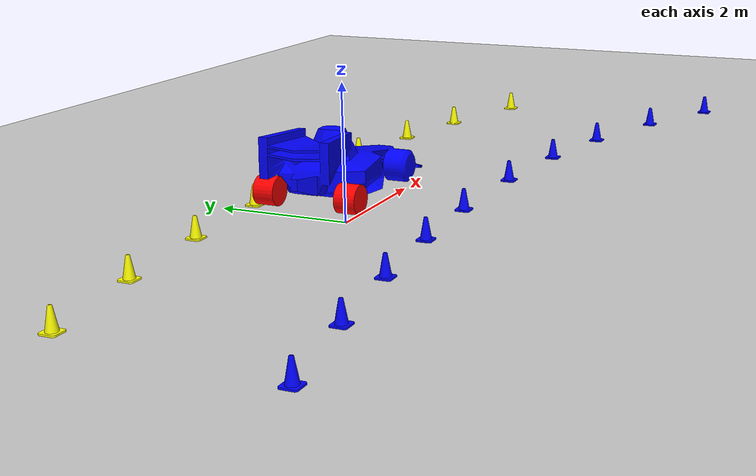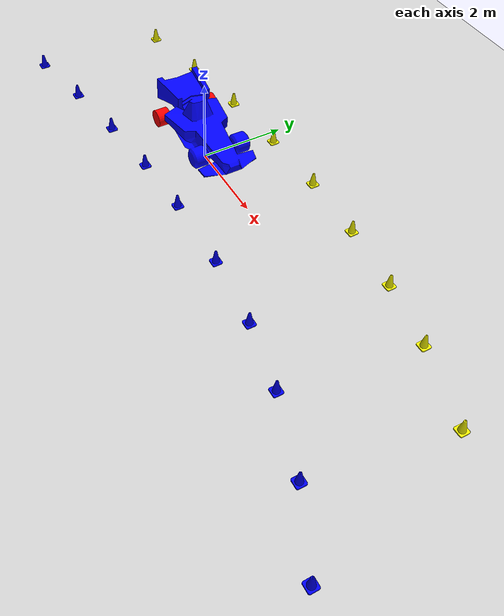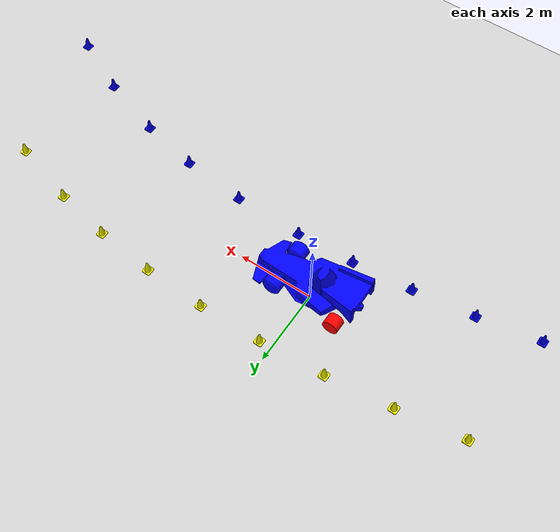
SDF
<sdf version="1.8">
 <world name="sim">
  <model name="ground_plane">
   <static>true</static>
   <link name="link">
    <collision name="collision"><geometry><plane><normal>0 0 0</normal></plane></geometry></collision>
    <visual name="visual">
     <geometry><plane><normal>0 0 1</normal><size>1000 1000</size></plane></geometry>
     <material>
      <ambient>0.8 0.8 0.8 1</ambient>
      <diffuse>0.8 0.8 0.8 1</diffuse>
      <specular>0.8 0.8 0.8 1</specular>
     </material>
    </visual>
   </link>
  </model>
  <model name="vehicle_blue">
   <pose>0 0 1.0 0.0 0.0 0.0</pose>
   <frame name="lidar_frame" attached_to="chassis"><pose>-0.26 0 0.47 0 0.1570796 0.0</pose></frame>
   <link name="chassis">
    <sensor name="lidar" type="gpu_lidar">
     <pose relative_to="lidar_frame">0 0 0 0 0 0</pose>
     <topic>model</topic>
     <update_rate>20</update_rate>
     <lidar>
      <scan>
       <horizontal>
        <samples>500</samples>
        <resolution>0.1</resolution>
        <min_angle>-1.570796</min_angle>
        <max_angle>1.570796</max_angle>
       </horizontal>
       <vertical>
        <samples>320</samples>
        <resolution>0.1</resolution>
        <min_angle>-0.4363323</min_angle>
        <max_angle>0.2617994</max_angle>
       </vertical>
      </scan>
      <range><min>0.01</min><max>80.0</max><resolution>0.01</resolution></range>
      <noise><type>gaussian</type><mean>0.0</mean><stddev>0.01</stddev></noise>
     </lidar>
     <always_on>1</always_on>
     <visualize>true</visualize>
    </sensor>
    <sensor name="imu_sensor" type="imu">
     <always_on>1</always_on>
     <update_rate>100</update_rate>
     <visualize>true</visualize>
     <topic>imu</topic>
    </sensor>
    <inertial>
     <mass>100.14395</mass>
     <inertia>
      <ixx>0.126164</ixx>
      <ixy>0</ixy>
      <ixz>0</ixz>
      <iyy>0.416519</iyy>
      <iyz>0</iyz>
      <izz>0.481014</izz>
     </inertia>
    </inertial>
    <visual name="visual">
     <geometry><mesh><scale>1 1 1</scale><uri>../models/formula_car_with_wheels.stl</uri></mesh></geometry>
     <material>
      <ambient>0.0 0.0 1.0 1</ambient>
      <diffuse>0.0 0.0 1.0 1</diffuse>
      <specular>0.0 0.0 1.0 1</specular>
     </material>
    </visual>
    <collision name="collision">
     <geometry>
      <mesh><scale>1 1 1</scale><uri>../models/formula_car_with_wheels.stl</uri></mesh>
      <surface><friction><ode><mu>1.2</mu><mu2>1.2</mu2></ode></friction></surface>
     </geometry>
    </collision>
   </link>
   <link name="left_wheel">
    <pose relative_to="chassis">-1 0.6 -0.33 -1.5707 0 0</pose>
    <inertial>
     <mass>20</mass>
     <inertia><ixx>0.145833</ixx><ixy>0</ixy><ixz>0</ixz><iyy>0.145833</iyy><iyz>0</iyz><izz>0.125</izz></inertia>
    </inertial>
    <visual name="visual">
     <geometry><cylinder><radius>0.2</radius><length>0.3</length></cylinder></geometry>
     <material>
      <ambient>1.0 0.0 0.0 1</ambient>
      <diffuse>1.0 0.0 0.0 1</diffuse>
      <specular>1.0 0.0 0.0 1</specular>
     </material>
    </visual>
    <collision name="collision">
     <geometry><cylinder><radius>0.2</radius><length>0.3</length></cylinder></geometry>
    </collision>
   </link>
   <link name="right_wheel">
    <pose relative_to="chassis">-1 -0.6 -0.33 -1.5707 0 0</pose>
    <inertial>
     <mass>20</mass>
     <inertia><ixx>0.145833</ixx><ixy>0</ixy><ixz>0</ixz><iyy>0.145833</iyy><iyz>0</iyz><izz>0.125</izz></inertia>
    </inertial>
    <visual name="visual">
     <geometry><cylinder><radius>0.2</radius><length>0.3</length></cylinder></geometry>
     <material>
      <ambient>1.0 0.0 0.0 1</ambient>
      <diffuse>1.0 0.0 0.0 1</diffuse>
      <specular>1.0 0.0 0.0 1</specular>
     </material>
    </visual>
    <collision name="collision">
     <geometry><cylinder><radius>0.2</radius><length>0.3</length></cylinder></geometry>
    </collision>
   </link>
   <link name="caster">
    <pose relative_to="chassis">0.7 0 -0.43 0 0 0</pose>
    <inertial>
     <mass>1</mass>
     <inertia><ixx>0.1</ixx><ixy>0</ixy><ixz>0</ixz><iyy>0.1</iyy><iyz>0</iyz><izz>0.1</izz></inertia>
    </inertial>
    <visual name="visual_caster">
     <geometry><sphere><radius>0.1</radius></sphere></geometry>
     <material>
      <ambient>0.2 0.2 0.2 1</ambient>
      <diffuse>0.2 0.2 0.2 1</diffuse>
      <specular>0.2 0.2 0.2 1</specular>
     </material>
    </visual>
    <collision name="collision_caster"><geometry><sphere><radius>0.1</radius></sphere></geometry></collision>
   </link>
   <joint name="left_wheel_joint" type="revolute">
    <pose relative_to="left_wheel"/>
    <parent>chassis</parent>
    <child>left_wheel</child>
    <axis>
     <xyz expressed_in="__model__">0 1 0</xyz>
     <limit><lower>-1.79769e+308</lower><upper>1.79769e+308</upper></limit>
    </axis>
   </joint>
   <joint name="right_wheel_joint" type="revolute">
    <pose relative_to="right_wheel"/>
    <parent>chassis</parent>
    <child>right_wheel</child>
    <axis>
     <xyz expressed_in="__model__">0 1 0</xyz>
     <limit><lower>-1.79769e+308</lower><upper>1.79769e+308</upper></limit>
    </axis>
   </joint>
   <joint name="caster_wheel" type="ball"><parent>chassis</parent><child>caster</child></joint>
   <plugin filename="libignition-gazebo-diff-drive-system.so" name="ignition::gazebo::systems::DiffDrive">
    <left_joint>left_wheel_joint</left_joint>
    <right_joint>right_wheel_joint</right_joint>
    <wheel_separation>1.2</wheel_separation>
    <wheel_radius>0.2</wheel_radius>
    <topic>/model/cmd_vel</topic>
   </plugin>
   <plugin filename="libignition-gazebo-odometry-publisher-system" name="ignition::gazebo::systems::OdometryPublisher">
    <rpy_offset>0 0 0</rpy_offset>
    <dimensions>3</dimensions>
    <odom_publish_frequency>20</odom_publish_frequency>
   </plugin>
  </model>
  <model name="cone_24">
   <static>true</static>
   <pose>-5.149413122479829 -2.0639887468521567 0 0 0 0</pose>
   <link name="cone_link">
    <inertial>
     <mass>0.45</mass>
     <inertia><ixx>0.5</ixx><ixy>0</ixy><ixz>0</ixz><iyy>0.5</iyy><iyz>0</iyz><izz>0.5</izz></inertia>
    </inertial>
    <visual name="visual">
     <geometry><mesh><scale>1 1 1</scale><uri>../models/cone_325_no_color.stl</uri></mesh></geometry>
     <material>
      <ambient>0.0 0.0 1.0 1</ambient>
      <diffuse>0.0 0.0 1.0 1</diffuse>
      <specular>0.0 0.0 1.0 1</specular>
     </material>
    </visual>
    <collision name="collision">
     <geometry><mesh><uri>../models/cone_325_no_color.stl</uri></mesh></geometry>
    </collision>
    <sensor name="sensor_contact" type="contact"><contact><collision>collision</collision></contact></sensor>
   </link>
  </model>
  <model name="cone_25">
   <static>true</static>
   <pose>-3.531471388463787 -1.762040088208603 0 0 0 0</pose>
   <link name="cone_link">
    <inertial>
     <mass>0.45</mass>
     <inertia><ixx>0.5</ixx><ixy>0</ixy><ixz>0</ixz><iyy>0.5</iyy><iyz>0</iyz><izz>0.5</izz></inertia>
    </inertial>
    <visual name="visual">
     <geometry><mesh><scale>1 1 1</scale><uri>../models/cone_325_no_color.stl</uri></mesh></geometry>
     <material>
      <ambient>0.0 0.0 1.0 1</ambient>
      <diffuse>0.0 0.0 1.0 1</diffuse>
      <specular>0.0 0.0 1.0 1</specular>
     </material>
    </visual>
    <collision name="collision">
     <geometry><mesh><uri>../models/cone_325_no_color.stl</uri></mesh></geometry>
    </collision>
    <sensor name="sensor_contact" type="contact"><contact><collision>collision</collision></contact></sensor>
   </link>
  </model>
  <model name="cone_26">
   <static>true</static>
   <pose>-1.9212012981782856 -1.5313999217072949 0 0 0 0</pose>
   <link name="cone_link">
    <inertial>
     <mass>0.45</mass>
     <inertia><ixx>0.5</ixx><ixy>0</ixy><ixz>0</ixz><iyy>0.5</iyy><iyz>0</iyz><izz>0.5</izz></inertia>
    </inertial>
    <visual name="visual">
     <geometry><mesh><scale>1 1 1</scale><uri>../models/cone_325_no_color.stl</uri></mesh></geometry>
     <material>
      <ambient>0.0 0.0 1.0 1</ambient>
      <diffuse>0.0 0.0 1.0 1</diffuse>
      <specular>0.0 0.0 1.0 1</specular>
     </material>
    </visual>
    <collision name="collision">
     <geometry><mesh><uri>../models/cone_325_no_color.stl</uri></mesh></geometry>
    </collision>
    <sensor name="sensor_contact" type="contact"><contact><collision>collision</collision></contact></sensor>
   </link>
  </model>
  <model name="cone_27">
   <static>true</static>
   <pose>-0.33644172139079 -1.377386690831095 0 0 0 0</pose>
   <link name="cone_link">
    <inertial>
     <mass>0.45</mass>
     <inertia><ixx>0.5</ixx><ixy>0</ixy><ixz>0</ixz><iyy>0.5</iyy><iyz>0</iyz><izz>0.5</izz></inertia>
    </inertial>
    <visual name="visual">
     <geometry><mesh><scale>1 1 1</scale><uri>../models/cone_325_no_color.stl</uri></mesh></geometry>
     <material>
      <ambient>0.0 0.0 1.0 1</ambient>
      <diffuse>0.0 0.0 1.0 1</diffuse>
      <specular>0.0 0.0 1.0 1</specular>
     </material>
    </visual>
    <collision name="collision">
     <geometry><mesh><uri>../models/cone_325_no_color.stl</uri></mesh></geometry>
    </collision>
    <sensor name="sensor_contact" type="contact"><contact><collision>collision</collision></contact></sensor>
   </link>
  </model>
  <model name="cone_28">
   <static>true</static>
   <pose>1.2049684721312581 -1.3053188390628434 0 0 0 0</pose>
   <link name="cone_link">
    <inertial>
     <mass>0.45</mass>
     <inertia><ixx>0.5</ixx><ixy>0</ixy><ixz>0</ixz><iyy>0.5</iyy><iyz>0</iyz><izz>0.5</izz></inertia>
    </inertial>
    <visual name="visual">
     <geometry><mesh><scale>1 1 1</scale><uri>../models/cone_325_no_color.stl</uri></mesh></geometry>
     <material>
      <ambient>0.0 0.0 1.0 1</ambient>
      <diffuse>0.0 0.0 1.0 1</diffuse>
      <specular>0.0 0.0 1.0 1</specular>
     </material>
    </visual>
    <collision name="collision">
     <geometry><mesh><uri>../models/cone_325_no_color.stl</uri></mesh></geometry>
    </collision>
    <sensor name="sensor_contact" type="contact"><contact><collision>collision</collision></contact></sensor>
   </link>
  </model>
  <model name="cone_29">
   <static>true</static>
   <pose>3.0435947406554265 -1.338572029966496 0 0 0 0</pose>
   <link name="cone_link">
    <inertial>
     <mass>0.45</mass>
     <inertia><ixx>0.5</ixx><ixy>0</ixy><ixz>0</ixz><iyy>0.5</iyy><iyz>0</iyz><izz>0.5</izz></inertia>
    </inertial>
    <visual name="visual">
     <geometry><mesh><scale>1 1 1</scale><uri>../models/cone_325_no_color.stl</uri></mesh></geometry>
     <material>
      <ambient>0.0 0.0 1.0 1</ambient>
      <diffuse>0.0 0.0 1.0 1</diffuse>
      <specular>0.0 0.0 1.0 1</specular>
     </material>
    </visual>
    <collision name="collision">
     <geometry><mesh><uri>../models/cone_325_no_color.stl</uri></mesh></geometry>
    </collision>
    <sensor name="sensor_contact" type="contact"><contact><collision>collision</collision></contact></sensor>
   </link>
  </model>
  <model name="cone_30">
   <static>true</static>
   <pose>4.751856454828998 -1.518521081013311 0 0 0 0</pose>
   <link name="cone_link">
    <inertial>
     <mass>0.45</mass>
     <inertia><ixx>0.5</ixx><ixy>0</ixy><ixz>0</ixz><iyy>0.5</iyy><iyz>0</iyz><izz>0.5</izz></inertia>
    </inertial>
    <visual name="visual">
     <geometry><mesh><scale>1 1 1</scale><uri>../models/cone_325_no_color.stl</uri></mesh></geometry>
     <material>
      <ambient>0.0 0.0 1.0 1</ambient>
      <diffuse>0.0 0.0 1.0 1</diffuse>
      <specular>0.0 0.0 1.0 1</specular>
     </material>
    </visual>
    <collision name="collision">
     <geometry><mesh><uri>../models/cone_325_no_color.stl</uri></mesh></geometry>
    </collision>
    <sensor name="sensor_contact" type="contact"><contact><collision>collision</collision></contact></sensor>
   </link>
  </model>
  <model name="cone_31">
   <static>true</static>
   <pose>6.3103529175183315 -1.8479013146042567 0 0 0 0</pose>
   <link name="cone_link">
    <inertial>
     <mass>0.45</mass>
     <inertia><ixx>0.5</ixx><ixy>0</ixy><ixz>0</ixz><iyy>0.5</iyy><iyz>0</iyz><izz>0.5</izz></inertia>
    </inertial>
    <visual name="visual">
     <geometry><mesh><scale>1 1 1</scale><uri>../models/cone_325_no_color.stl</uri></mesh></geometry>
     <material>
      <ambient>0.0 0.0 1.0 1</ambient>
      <diffuse>0.0 0.0 1.0 1</diffuse>
      <specular>0.0 0.0 1.0 1</specular>
     </material>
    </visual>
    <collision name="collision">
     <geometry><mesh><uri>../models/cone_325_no_color.stl</uri></mesh></geometry>
    </collision>
    <sensor name="sensor_contact" type="contact"><contact><collision>collision</collision></contact></sensor>
   </link>
  </model>
  <model name="cone_32">
   <static>true</static>
   <pose>8.002620425679572 -2.4209268721951895 0 0 0 0</pose>
   <link name="cone_link">
    <inertial>
     <mass>0.45</mass>
     <inertia><ixx>0.5</ixx><ixy>0</ixy><ixz>0</ixz><iyy>0.5</iyy><iyz>0</iyz><izz>0.5</izz></inertia>
    </inertial>
    <visual name="visual">
     <geometry><mesh><scale>1 1 1</scale><uri>../models/cone_325_no_color.stl</uri></mesh></geometry>
     <material>
      <ambient>0.0 0.0 1.0 1</ambient>
      <diffuse>0.0 0.0 1.0 1</diffuse>
      <specular>0.0 0.0 1.0 1</specular>
     </material>
    </visual>
    <collision name="collision">
     <geometry><mesh><uri>../models/cone_325_no_color.stl</uri></mesh></geometry>
    </collision>
    <sensor name="sensor_contact" type="contact"><contact><collision>collision</collision></contact></sensor>
   </link>
  </model>
  <model name="cone_33">
   <static>true</static>
   <pose>9.530303173262048 -3.162026305540974 0 0 0 0</pose>
   <link name="cone_link">
    <inertial>
     <mass>0.45</mass>
     <inertia><ixx>0.5</ixx><ixy>0</ixy><ixz>0</ixz><iyy>0.5</iyy><iyz>0</iyz><izz>0.5</izz></inertia>
    </inertial>
    <visual name="visual">
     <geometry><mesh><scale>1 1 1</scale><uri>../models/cone_325_no_color.stl</uri></mesh></geometry>
     <material>
      <ambient>0.0 0.0 1.0 1</ambient>
      <diffuse>0.0 0.0 1.0 1</diffuse>
      <specular>0.0 0.0 1.0 1</specular>
     </material>
    </visual>
    <collision name="collision">
     <geometry><mesh><uri>../models/cone_325_no_color.stl</uri></mesh></geometry>
    </collision>
    <sensor name="sensor_contact" type="contact"><contact><collision>collision</collision></contact></sensor>
   </link>
  </model>
  <model name="cone_118">
   <static>true</static>
   <pose>-4.8759000874197005 1.0474224153778242 0 0 0 0</pose>
   <link name="cone_link">
    <inertial>
     <mass>0.45</mass>
     <inertia><ixx>0.5</ixx><ixy>0</ixy><ixz>0</ixz><iyy>0.5</iyy><iyz>0</iyz><izz>0.5</izz></inertia>
    </inertial>
    <visual name="visual">
     <geometry><mesh><scale>1 1 1</scale><uri>../models/cone_325_no_color.stl</uri></mesh></geometry>
     <material>
      <ambient>1.0 1.0 0.0 1</ambient>
      <diffuse>1.0 1.0 0.0 1</diffuse>
      <specular>1.0 1.0 0.0 1</specular>
     </material>
    </visual>
    <collision name="collision">
     <geometry><mesh><uri>../models/cone_325_no_color.stl</uri></mesh></geometry>
    </collision>
    <sensor name="sensor_contact" type="contact"><contact><collision>collision</collision></contact></sensor>
   </link>
  </model>
  <model name="cone_119">
   <static>true</static>
   <pose>-3.133564330600769 1.334473465121127 0 0 0 0</pose>
   <link name="cone_link">
    <inertial>
     <mass>0.45</mass>
     <inertia><ixx>0.5</ixx><ixy>0</ixy><ixz>0</ixz><iyy>0.5</iyy><iyz>0</iyz><izz>0.5</izz></inertia>
    </inertial>
    <visual name="visual">
     <geometry><mesh><scale>1 1 1</scale><uri>../models/cone_325_no_color.stl</uri></mesh></geometry>
     <material>
      <ambient>1.0 1.0 0.0 1</ambient>
      <diffuse>1.0 1.0 0.0 1</diffuse>
      <specular>1.0 1.0 0.0 1</specular>
     </material>
    </visual>
    <collision name="collision">
     <geometry><mesh><uri>../models/cone_325_no_color.stl</uri></mesh></geometry>
    </collision>
    <sensor name="sensor_contact" type="contact"><contact><collision>collision</collision></contact></sensor>
   </link>
  </model>
  <model name="cone_120">
   <static>true</static>
   <pose>-1.3971373835342638 1.543104875388856 0 0 0 0</pose>
   <link name="cone_link">
    <inertial>
     <mass>0.45</mass>
     <inertia><ixx>0.5</ixx><ixy>0</ixy><ixz>0</ixz><iyy>0.5</iyy><iyz>0</iyz><izz>0.5</izz></inertia>
    </inertial>
    <visual name="visual">
     <geometry><mesh><scale>1 1 1</scale><uri>../models/cone_325_no_color.stl</uri></mesh></geometry>
     <material>
      <ambient>1.0 1.0 0.0 1</ambient>
      <diffuse>1.0 1.0 0.0 1</diffuse>
      <specular>1.0 1.0 0.0 1</specular>
     </material>
    </visual>
    <collision name="collision">
     <geometry><mesh><uri>../models/cone_325_no_color.stl</uri></mesh></geometry>
    </collision>
    <sensor name="sensor_contact" type="contact"><contact><collision>collision</collision></contact></sensor>
   </link>
  </model>
  <model name="cone_121">
   <static>true</static>
   <pose>0.32042289256469675 1.6668068506228835 0 0 0 0</pose>
   <link name="cone_link">
    <inertial>
     <mass>0.45</mass>
     <inertia><ixx>0.5</ixx><ixy>0</ixy><ixz>0</ixz><iyy>0.5</iyy><iyz>0</iyz><izz>0.5</izz></inertia>
    </inertial>
    <visual name="visual">
     <geometry><mesh><scale>1 1 1</scale><uri>../models/cone_325_no_color.stl</uri></mesh></geometry>
     <material>
      <ambient>1.0 1.0 0.0 1</ambient>
      <diffuse>1.0 1.0 0.0 1</diffuse>
      <specular>1.0 1.0 0.0 1</specular>
     </material>
    </visual>
    <collision name="collision">
     <geometry><mesh><uri>../models/cone_325_no_color.stl</uri></mesh></geometry>
    </collision>
    <sensor name="sensor_contact" type="contact"><contact><collision>collision</collision></contact></sensor>
   </link>
  </model>
  <model name="cone_122">
   <static>true</static>
   <pose>2.007373507453455 1.6978459304507036 0 0 0 0</pose>
   <link name="cone_link">
    <inertial>
     <mass>0.45</mass>
     <inertia><ixx>0.5</ixx><ixy>0</ixy><ixz>0</ixz><iyy>0.5</iyy><iyz>0</iyz><izz>0.5</izz></inertia>
    </inertial>
    <visual name="visual">
     <geometry><mesh><scale>1 1 1</scale><uri>../models/cone_325_no_color.stl</uri></mesh></geometry>
     <material>
      <ambient>1.0 1.0 0.0 1</ambient>
      <diffuse>1.0 1.0 0.0 1</diffuse>
      <specular>1.0 1.0 0.0 1</specular>
     </material>
    </visual>
    <collision name="collision">
     <geometry><mesh><uri>../models/cone_325_no_color.stl</uri></mesh></geometry>
    </collision>
    <sensor name="sensor_contact" type="contact"><contact><collision>collision</collision></contact></sensor>
   </link>
  </model>
  <model name="cone_123">
   <static>true</static>
   <pose>3.6536444726261728 1.6264845678938724 0 0 0 0</pose>
   <link name="cone_link">
    <inertial>
     <mass>0.45</mass>
     <inertia><ixx>0.5</ixx><ixy>0</ixy><ixz>0</ixz><iyy>0.5</iyy><iyz>0</iyz><izz>0.5</izz></inertia>
    </inertial>
    <visual name="visual">
     <geometry><mesh><scale>1 1 1</scale><uri>../models/cone_325_no_color.stl</uri></mesh></geometry>
     <material>
      <ambient>1.0 1.0 0.0 1</ambient>
      <diffuse>1.0 1.0 0.0 1</diffuse>
      <specular>1.0 1.0 0.0 1</specular>
     </material>
    </visual>
    <collision name="collision">
     <geometry><mesh><uri>../models/cone_325_no_color.stl</uri></mesh></geometry>
    </collision>
    <sensor name="sensor_contact" type="contact"><contact><collision>collision</collision></contact></sensor>
   </link>
  </model>
  <model name="cone_124">
   <static>true</static>
   <pose>5.248161584476235 1.4401409845639388 0 0 0 0</pose>
   <link name="cone_link">
    <inertial>
     <mass>0.45</mass>
     <inertia><ixx>0.5</ixx><ixy>0</ixy><ixz>0</ixz><iyy>0.5</iyy><iyz>0</iyz><izz>0.5</izz></inertia>
    </inertial>
    <visual name="visual">
     <geometry><mesh><scale>1 1 1</scale><uri>../models/cone_325_no_color.stl</uri></mesh></geometry>
     <material>
      <ambient>1.0 1.0 0.0 1</ambient>
      <diffuse>1.0 1.0 0.0 1</diffuse>
      <specular>1.0 1.0 0.0 1</specular>
     </material>
    </visual>
    <collision name="collision">
     <geometry><mesh><uri>../models/cone_325_no_color.stl</uri></mesh></geometry>
    </collision>
    <sensor name="sensor_contact" type="contact"><contact><collision>collision</collision></contact></sensor>
   </link>
  </model>
  <model name="cone_125">
   <static>true</static>
   <pose>6.757568887396003 1.1347331701366712 0 0 0 0</pose>
   <link name="cone_link">
    <inertial>
     <mass>0.45</mass>
     <inertia><ixx>0.5</ixx><ixy>0</ixy><ixz>0</ixz><iyy>0.5</iyy><iyz>0</iyz><izz>0.5</izz></inertia>
    </inertial>
    <visual name="visual">
     <geometry><mesh><scale>1 1 1</scale><uri>../models/cone_325_no_color.stl</uri></mesh></geometry>
     <material>
      <ambient>1.0 1.0 0.0 1</ambient>
      <diffuse>1.0 1.0 0.0 1</diffuse>
      <specular>1.0 1.0 0.0 1</specular>
     </material>
    </visual>
    <collision name="collision">
     <geometry><mesh><uri>../models/cone_325_no_color.stl</uri></mesh></geometry>
    </collision>
    <sensor name="sensor_contact" type="contact"><contact><collision>collision</collision></contact></sensor>
   </link>
  </model>
  <model name="cone_126">
   <static>true</static>
   <pose>8.513410598802317 0.598466059611984 0 0 0 0</pose>
   <link name="cone_link">
    <inertial>
     <mass>0.45</mass>
     <inertia><ixx>0.5</ixx><ixy>0</ixy><ixz>0</ixz><iyy>0.5</iyy><iyz>0</iyz><izz>0.5</izz></inertia>
    </inertial>
    <visual name="visual">
     <geometry><mesh><scale>1 1 1</scale><uri>../models/cone_325_no_color.stl</uri></mesh></geometry>
     <material>
      <ambient>1.0 1.0 0.0 1</ambient>
      <diffuse>1.0 1.0 0.0 1</diffuse>
      <specular>1.0 1.0 0.0 1</specular>
     </material>
    </visual>
    <collision name="collision">
     <geometry><mesh><uri>../models/cone_325_no_color.stl</uri></mesh></geometry>
    </collision>
    <sensor name="sensor_contact" type="contact"><contact><collision>collision</collision></contact></sensor>
   </link>
  </model>
 </world>
</sdf>
